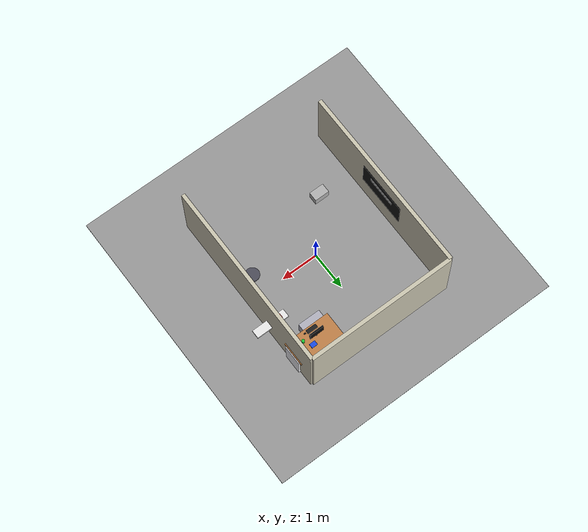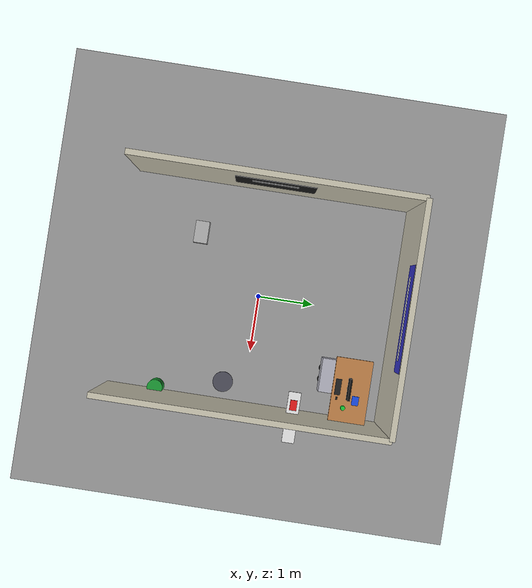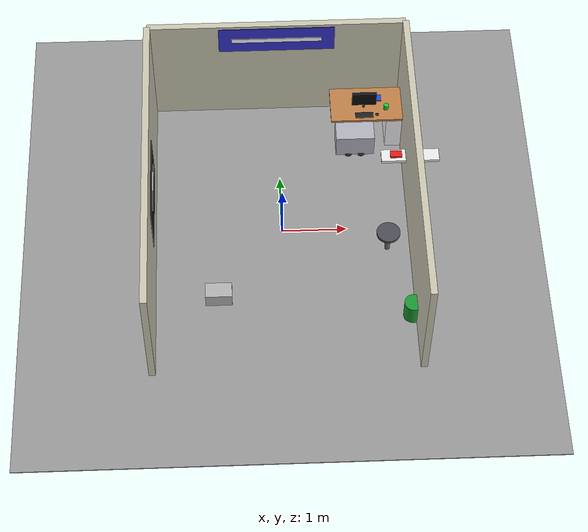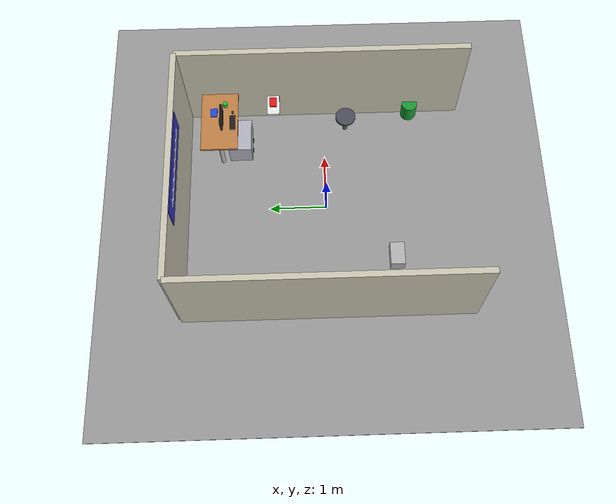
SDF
<?xml version="1.0"?>
<sdf version="1.6">
  <world name="vrc_university_lab">

    <!-- Light -->
    <include>
      <uri>model://sun</uri>
    </include>
    <light type="point" name="lab_ceiling_light">
      <cast_shadows>true</cast_shadows>
      <pose>0 0 2.5 0 0 0</pose>
      <diffuse>1 1 1 1</diffuse>
      <specular>0.2 0.2 0.2 1</specular>
      <attenuation>
        <range>8</range>
        <constant>0.8</constant>
        <linear>0.02</linear>
        <quadratic>0.01</quadratic>
      </attenuation>
    </light>

    <!-- Floor -->
    <model name="lab_floor">
      <static>true</static>
      <link name="link">
        <collision name="collision">
          <geometry>
            <box><size>8 8 0.02</size></box>
          </geometry>
        </collision>
        <visual name="visual">
          <geometry>
            <box><size>8 8 0.02</size></box>
          </geometry>
          <material>
            <ambient>0.5 0.5 0.5 1</ambient>
            <diffuse>0.6 0.6 0.6 1</diffuse>
          </material>
        </visual>
        <pose>0 0 -0.01 0 0 0</pose>
      </link>
    </model>

    <!-- Walls (slightly yellow) -->
    <model name="lab_walls">
      <static>true</static>

      <!-- back wall -->
      <link name="back_wall">
        <pose>0 2.5 1.0 0 0 0</pose>
        <visual name="back_wall_vis">
          <geometry>
            <box><size>4.0 0.1 2.0</size></box>
          </geometry>
          <material>
            <ambient>0.6 0.58 0.5 1</ambient>
            <diffuse>0.8 0.78 0.7 1</diffuse>
          </material>
        </visual>
      </link>

      <!-- left wall -->
      <link name="left_wall">
        <pose>-2.0 0 1.0 0 0 0</pose>
        <visual name="left_wall_vis">
          <geometry>
            <box><size>0.1 5.0 2.0</size></box>
          </geometry>
          <material>
            <ambient>0.6 0.58 0.5 1</ambient>
            <diffuse>0.8 0.78 0.7 1</diffuse>
          </material>
        </visual>
      </link>

      <!-- right wall -->
      <link name="right_wall">
        <pose>2.0 0 1.0 0 0 0</pose>
        <visual name="right_wall_vis">
          <geometry>
            <box><size>0.1 5.0 2.0</size></box>
          </geometry>
          <material>
            <ambient>0.6 0.58 0.5 1</ambient>
            <diffuse>0.8 0.78 0.7 1</diffuse>
          </material>
        </visual>
      </link>
    </model>

    <!-- Blackboard -->
    <model name="blackboard">
      <static>true</static>
      <link name="blackboard_link">
        <pose>-1.95 0 1.1 0 0 0</pose>
        <visual name="blackboard_vis">
          <geometry>
            <box><size>0.02 1.4 0.8</size></box>
          </geometry>
          <material>
            <ambient>0.05 0.05 0.05 1</ambient>
            <diffuse>0.08 0.08 0.08 1</diffuse>
          </material>
        </visual>
      </link>
    </model>
<model name="board_text">
  <static>true</static>
  <link name="link">
    <pose>-1.93 0 1.25 0 0 0</pose>
    <visual name="visual">
      <geometry>
        <box><size>0.01 0.8 0.08</size></box>
      </geometry>
      <material>
        <ambient>1 1 1 1</ambient>
      </material>
    </visual>
  </link>
</model>
<!-- Advanced rear workstation -->
<model name="rear_workstation">
  <static>true</static>

  <!-- desk top -->
  <link name="desk_top">
    <pose>1.45 1.85 0.76 0 0 0</pose>
    <collision name="collision">
      <geometry>
        <box><size>1.25 0.65 0.04</size></box>
      </geometry>
    </collision>
    <visual name="visual">
      <geometry>
        <box><size>1.25 0.65 0.04</size></box>
      </geometry>
      <material>
        <ambient>0.58 0.36 0.2 1</ambient>
        <diffuse>0.75 0.5 0.28 1</diffuse>
      </material>
    </visual>
  </link>

  <!-- left leg -->
  <link name="left_leg">
    <pose>1.0 1.85 0.38 0 0 0</pose>
    <visual name="visual">
      <geometry>
        <cylinder>
          <radius>0.04</radius>
          <length>0.76</length>
        </cylinder>
      </geometry>
    </visual>
  </link>

  <!-- right cabinet -->
  <link name="cabinet">
    <pose>1.9 1.85 0.38 0 0 0</pose>
    <collision name="collision">
      <geometry>
        <box><size>0.4 0.5 0.72</size></box>
      </geometry>
    </collision>
    <visual name="visual">
      <geometry>
        <box><size>0.4 0.5 0.72</size></box>
      </geometry>
      <material>
        <ambient>0.88 0.88 0.9 1</ambient>
        <diffuse>0.95 0.95 0.97 1</diffuse>
      </material>
    </visual>
  </link>
</model>
<model name="desktop_monitor">
  <static>true</static>

  <!-- screen -->
  <link name="screen">
    <pose>1.35 1.80 0.98 0 0 0</pose>
    <collision name="collision">
      <geometry>
        <box><size>0.38 0.04 0.26</size></box>
      </geometry>
    </collision>
    <visual name="visual">
      <geometry>
        <box><size>0.38 0.04 0.26</size></box>
      </geometry>
      <material>
        <ambient>0.02 0.02 0.02 1</ambient>
        <diffuse>0.04 0.04 0.04 1</diffuse>
        <specular>0.2 0.2 0.2 1</specular>
      </material>
    </visual>
  </link>

  <!-- stand neck -->
  <link name="stand_neck">
    <pose>1.35 1.80 0.84 0 0 0</pose>
    <visual name="visual">
      <geometry>
        <cylinder>
          <radius>0.02</radius>
          <length>0.18</length>
        </cylinder>
      </geometry>
      <material>
        <ambient>0.15 0.15 0.15 1</ambient>
      </material>
    </visual>
  </link>

  <!-- stand base -->
  <link name="stand_base">
    <pose>1.35 1.80 0.77 0 0 0</pose>
    <visual name="visual">
      <geometry>
        <box><size>0.18 0.12 0.01</size></box>
      </geometry>
      <material>
        <ambient>0.1 0.1 0.1 1</ambient>
      </material>
    </visual>
  </link>
</model>
<model name="keyboard">
  <static>true</static>
  <link name="link">
    <pose>1.35 1.62 0.79 0 0 0</pose>
    <collision name="collision">
      <geometry>
        <box><size>0.28 0.10 0.015</size></box>
      </geometry>
    </collision>
    <visual name="visual">
      <geometry>
        <box><size>0.28 0.10 0.015</size></box>
      </geometry>
      <material>
        <ambient>0.08 0.08 0.08 1</ambient>
        <diffuse>0.12 0.12 0.12 1</diffuse>
      </material>
    </visual>
  </link>
</model>
<model name="mouse">
  <static>true</static>
  <link name="link">
    <pose>1.55 1.62 0.80 0 0 0</pose>
    <visual name="visual">
      <geometry>
        <box><size>0.05 0.03 0.02</size></box>
      </geometry>
      <material>
        <ambient>0.1 0.1 0.1 1</ambient>
      </material>
    </visual>
  </link>
</model>

<model name="right_wall_shelf">
  <static>true</static>
  <link name="link">
    <pose>2.02 0.9 0.65 0 0 0</pose>
    <collision name="collision">
      <geometry>
        <box><size>0.9 0.22 0.05</size></box>
      </geometry>
    </collision>
    <visual name="visual">
      <geometry>
        <box><size>0.9 0.22 0.05</size></box>
      </geometry>
      <material>
        <ambient>0.92 0.92 0.92 1</ambient>
      </material>
    </visual>
  </link>
</model>
<model name="red_book">
  <static>true</static>
  <link name="link">
    <pose>1.8 0.9 0.70 0 0 0</pose>
    <visual name="visual">
      <geometry>
        <box><size>0.18 0.12 0.03</size></box>
      </geometry>
      <material>
        <ambient>0.9 0.1 0.1 1</ambient>
      </material>
    </visual>
  </link>
</model>
<model name="blue_notebook">
  <static>true</static>
  <link name="link">
    <pose>1.55 1.95 0.80 0 0 0</pose>
    <visual name="visual">
      <geometry>
        <box><size>0.16 0.12 0.015</size></box>
      </geometry>
      <material>
        <ambient>0.1 0.3 0.9 1</ambient>
      </material>
    </visual>
  </link>
</model>
<model name="green_mug">
  <static>true</static>
  <link name="link">
    <pose>1.7 1.75 0.82 0 0 0</pose>
    <visual name="visual">
      <geometry>
        <cylinder>
          <radius>0.04</radius>
          <length>0.09</length>
        </cylinder>
      </geometry>
      <material>
        <ambient>0.1 0.8 0.2 1</ambient>
      </material>
    </visual>
  </link>
</model>

<model name="fra_banner">
  <static>true</static>
  <link name="link">
    <pose>0 2.45 1.7 0 0 0</pose>
    <visual name="visual">
      <geometry>
        <box><size>1.8 0.02 0.5</size></box>
      </geometry>
      <material>
        <ambient>0.2 0.2 0.8 1</ambient>
      </material>
    </visual>
  </link>
</model>
<model name="fra_text_strip">
  <static>true</static>
  <link name="link">
    <pose>0 2.43 1.7 0 0 0</pose>
    <visual name="visual">
      <geometry>
        <box><size>1.4 0.01 0.08</size></box>
      </geometry>
      <material>
        <ambient>1 1 1 1</ambient>
      </material>
    </visual>
  </link>
</model>
<model name="green_bin">
  <static>true</static>
  <link name="link">
    <pose>1.9 -1.6 0.18 0 0 0</pose>
    <visual name="visual">
      <geometry>
        <cylinder>
          <radius>0.14</radius>
          <length>0.35</length>
        </cylinder>
      </geometry>
      <material>
        <ambient>0.1 0.6 0.2 1</ambient>
      </material>
    </visual>
  </link>
</model>

    <!-- Lab stool -->
    <model name="lab_stool">
      <static>true</static>
      <link name="seat">
        <pose>1.6 -0.4 0.45 0 0 0</pose>
        <visual name="seat_vis">
          <geometry>
            <cylinder><radius>0.18</radius><length>0.04</length></cylinder>
          </geometry>
          <material>
            <ambient>0.2 0.2 0.25 1</ambient>
            <diffuse>0.3 0.3 0.35 1</diffuse>
          </material>
        </visual>
      </link>
      <link name="leg">
        <pose>1.6 -0.4 0.25 0 0 0</pose>
        <visual name="leg_vis">
          <geometry>
            <cylinder><radius>0.04</radius><length>0.4</length></cylinder>
          </geometry>
          <material>
            <ambient>0.3 0.3 0.3 1</ambient>
            <diffuse>0.4 0.4 0.4 1</diffuse>
          </material>
        </visual>
      </link>
    </model>

    <!-- Equipment cart -->
    <model name="equipment_cart">
      <static>true</static>
      <link name="cart_body">
        <pose>1.2 1.5 0.4 0 0 0</pose>
        <visual name="cart_body_vis">
          <geometry>
            <box><size>0.6 0.4 0.4</size></box>
          </geometry>
          <material>
            <ambient>0.6 0.6 0.65 1</ambient>
            <diffuse>0.7 0.7 0.75 1</diffuse>
          </material>
        </visual>
      </link>
      <link name="cart_wheel_left">
        <pose>1.1 1.35 0.2 0 0 0</pose>
        <visual name="wheel_left_vis">
          <geometry>
            <cylinder><radius>0.07</radius><length>0.05</length></cylinder>
          </geometry>
          <material>
            <ambient>0.05 0.05 0.05 1</ambient>
            <diffuse>0.1 0.1 0.1 1</diffuse>
          </material>
        </visual>
      </link>
      <link name="cart_wheel_right">
        <pose>1.3 1.35 0.2 0 0 0</pose>
        <visual name="wheel_right_vis">
          <geometry>
            <cylinder><radius>0.07</radius><length>0.05</length></cylinder>
          </geometry>
          <material>
            <ambient>0.05 0.05 0.05 1</ambient>
            <diffuse>0.1 0.1 0.1 1</diffuse>
          </material>
        </visual>
      </link>
    </model>

    <!-- Toolbox -->
    <model name="toolbox">
      <static>true</static>
      <link name="toolbox_link">
        <pose>-1.0 -1.2 0.12 0 0 0</pose>
        <visual name="toolbox_vis">
          <geometry>
            <box><size>0.4 0.25 0.24</size></box>
          </geometry>
          <material>
            <ambient>0.6 0.6 0.6 1</ambient>
            <diffuse>0.7 0.7 0.7 1</diffuse>
          </material>
        </visual>
      </link>
    </model>

    <!-- Camera -->
    <gui fullscreen="false">
      <camera name="start_view">
        <pose>1.5 -2.5 1.8 0 0.4 1.57</pose>
        <view_controller>orbit</view_controller>
      </camera>
    </gui>

  </world>
</sdf>
